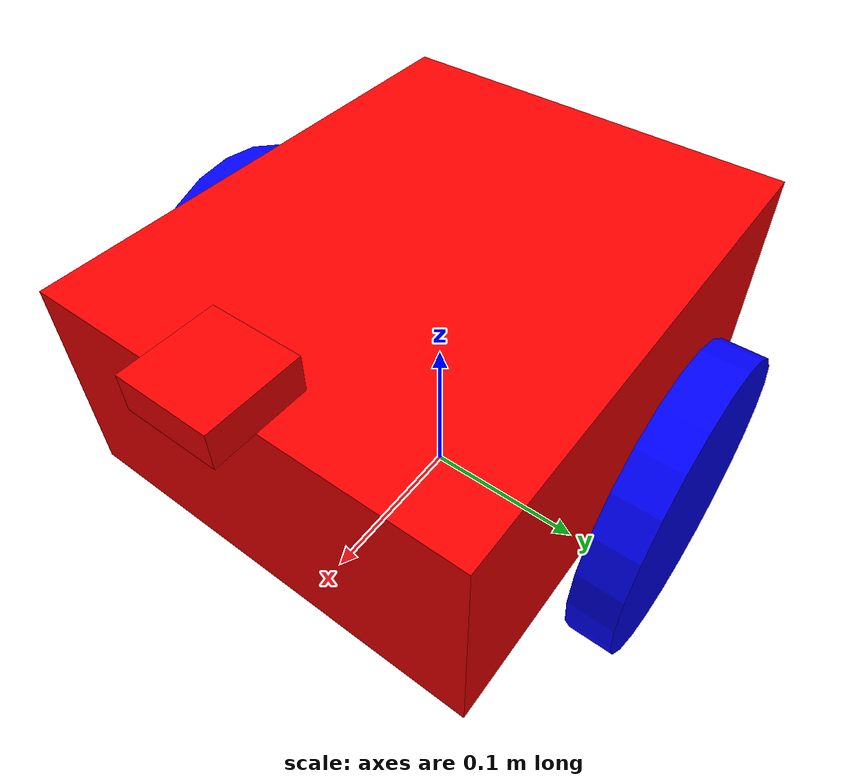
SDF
<?xml version="1.0" ?>
<sdf version="1.8">
  <model name="turtlebot">
    <link name="base_link">
      <pose>0 0 0.125 0 0 0</pose>
      <inertial>
        <mass>0.1</mass>
        <inertia>
          <ixx>0.0001</ixx>
          <ixy>0</ixy>
          <ixz>0</ixz>
          <iyy>0.0001</iyy>
          <iyz>0</iyz>
          <izz>0.0001</izz>
        </inertia>
      </inertial>
      <visual name="base_link_visual">
        <geometry>
          <box>
            <size>0.3 0.25 0.125</size>
          </box>
        </geometry>
        <material>
          <ambient>1 0 0 1</ambient>
          <diffuse>1 0 0 1</diffuse>
        </material>
      </visual>
      <collision name="base_link_collision">
        <geometry>
          <box>
            <size>0.3 0.25 0.125</size>
          </box>
        </geometry>
      </collision>
    </link>

    <link name="right_wheel_link">
      <pose>0 -0.15 0.085 1.5708 0 0</pose>
      <inertial>
        <mass>0.1</mass>
        <inertia>
          <ixx>0.0001</ixx>
          <ixy>0</ixy>
          <ixz>0</ixz>
          <iyy>0.0001</iyy>
          <iyz>0</iyz>
          <izz>0.0001</izz>
        </inertia>
      </inertial>
      <visual name="right_wheel_visual">
        <geometry>
          <cylinder>
            <radius>0.085</radius>
            <length>0.025</length>
          </cylinder>
        </geometry>
        <material>
          <ambient>0 0 1 1</ambient>
          <diffuse>0 0 1 1</diffuse>
        </material>
      </visual>
      <collision name="right_wheel_collision">
        <geometry>
          <cylinder>
            <radius>0.085</radius>
            <length>0.025</length>
          </cylinder>
        </geometry>
      </collision>
    </link>

    <link name="left_wheel_link">
      <pose>0 0.15 0.085 1.5708 0 0</pose>
      <inertial>
        <mass>0.1</mass>
        <inertia>
          <ixx>0.0001</ixx>
          <ixy>0</ixy>
          <ixz>0</ixz>
          <iyy>0.0001</iyy>
          <iyz>0</iyz>
          <izz>0.0001</izz>
        </inertia>
      </inertial>
      <visual name="left_wheel_visual">
        <geometry>
          <cylinder>
            <radius>0.085</radius>
            <length>0.025</length>
          </cylinder>
        </geometry>
        <material>
          <ambient>0 0 1 1</ambient>
          <diffuse>0 0 1 1</diffuse>
        </material>
      </visual>
      <collision name="left_wheel_collision">
        <geometry>
          <cylinder>
            <radius>0.085</radius>
            <length>0.025</length>
          </cylinder>
        </geometry>
      </collision>
    </link>

    <link name="laser_link">
      <pose>0.15 0 0.205 0 0 0</pose>
      <inertial>
        <mass>0.1</mass>
        <inertia>
          <ixx>0.0001</ixx>
          <ixy>0</ixy>
          <ixz>0</ixz>
          <iyy>0.0001</iyy>
          <iyz>0</iyz>
          <izz>0.0001</izz>
        </inertia>
      </inertial>
      <visual name="laser_visual">
        <geometry>
          <box>
            <size>0.05 0.05 0.02</size>
          </box>
        </geometry>
        <material>
          <ambient>1 0 0 1</ambient>
          <diffuse>1 0 0 1</diffuse>
        </material>
      </visual>
      <sensor name="gpu_lidar" type="gpu_lidar">
        <lidar>
          <scan>
            <horizontal>
              <samples>1800</samples>
              <resolution>1</resolution>
              <min_angle>-3.1459</min_angle>
              <max_angle>3.1459</max_angle>
            </horizontal>
            <vertical>
              <samples>16</samples>
              <resolution>1</resolution>
              <min_angle>-0.261799</min_angle>
              <max_angle>0.261799</max_angle>
            </vertical>
          </scan>
          <range>
            <min>0.05</min>
            <max>100</max>
            <resolution>0.01</resolution>
          </range>
          <noise>
            <type>gaussian</type>
            <mean>0</mean>
            <stddev>0.01</stddev>
          </noise>
        </lidar>
        <gz_frame_id>saye/sensor_link</gz_frame_id>
        <topic>laser_scan</topic>
        <visualize>true</visualize>
        <update_rate>10</update_rate>
      </sensor>

    </link>

    <joint name="right_wheel_joint" type="revolute">
      <parent>base_link</parent>
      <child>right_wheel_link</child>
      <axis>
        <xyz>0 0 1</xyz> </axis>
    </joint>

    <joint name="left_wheel_joint" type="revolute">
      <parent>base_link</parent>
      <child>left_wheel_link</child>
      <axis>
        <xyz>0 0 1</xyz>
      </axis>
    </joint>

    <joint name="laser_joint" type="fixed">
      <parent>base_link</parent>
      <child>laser_link</child>
    </joint>

    <plugin filename="gz-sim-diff-drive-system" name="gz::sim::systems::DiffDrive">
      <left_wheel>left_wheel_joint</left_wheel>
      <right_wheel>right_wheel_joint</right_wheel>
      <wheel_separation>0.3</wheel_separation>
      <wheel_radius>0.085</wheel_radius>
      <topic>cmd_vel</topic>
      <odom_topic>odom</odom_topic>
      <frame_id>odom</frame_id>
      <child_frame_id>base_link</child_frame_id>
    </plugin>
  </model>
</sdf>
